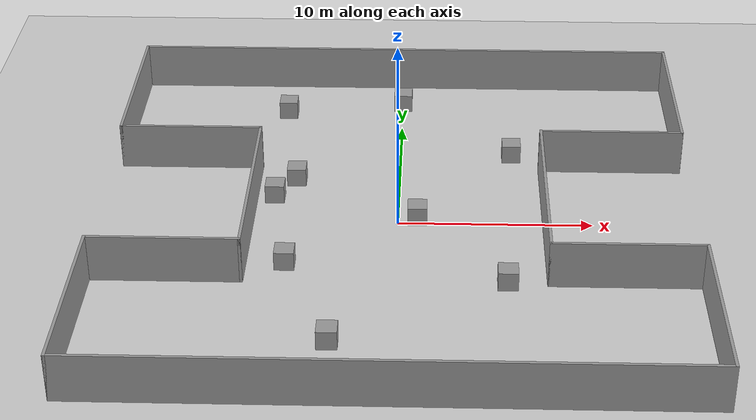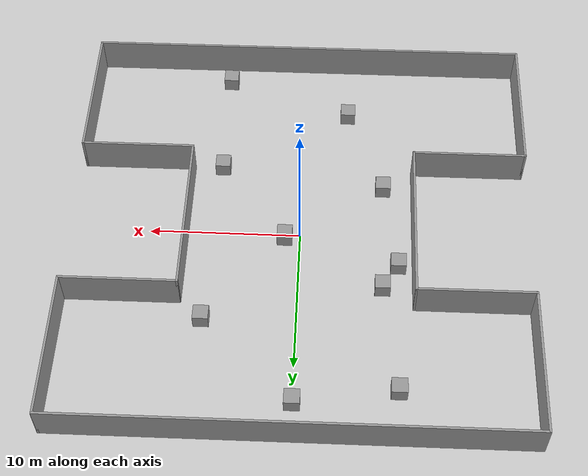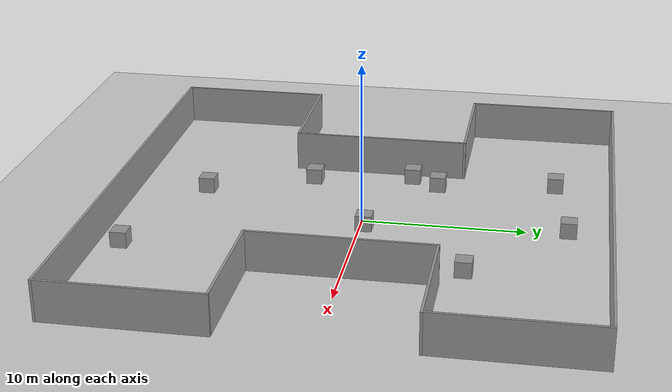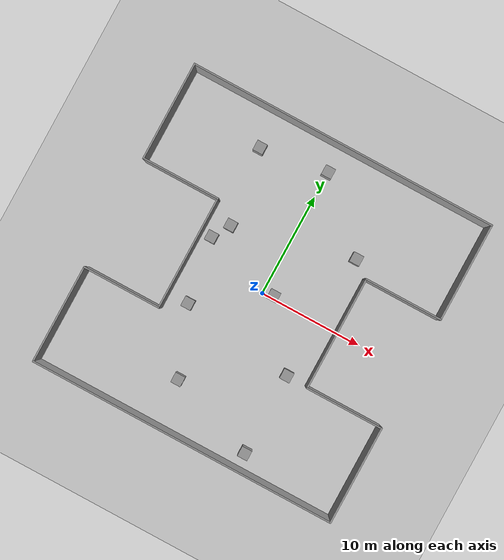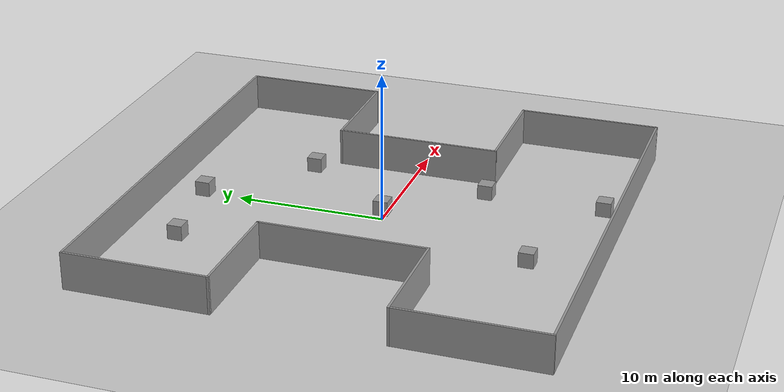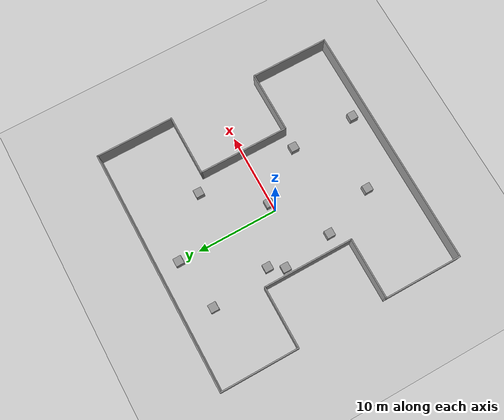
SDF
<sdf version="1.7">
 <world name="default">
  <light name="sun" type="directional">
   <pose>0 0 10 0 -0 0</pose>
   <diffuse>0.8 0.8 0.8 1</diffuse>
   <specular>0.2 0.2 0.2 1</specular>
   <attenuation>
    <range>1000</range>
    <constant>0.9</constant>
    <linear>0.01</linear>
    <quadratic>0.001</quadratic>
   </attenuation>
   <direction>-0.5 0.1 -0.9</direction>
   <spot><inner_angle>0</inner_angle><outer_angle>0</outer_angle><falloff>0</falloff></spot>
  </light>
  <model name="ground_plane">
   <static>1</static>
   <link name="link">
    <collision name="collision">
     <geometry><plane><normal>0 0 1</normal><size>100 100</size></plane></geometry>
     <surface><friction><ode><mu>100</mu><mu2>50</mu2></ode></friction></surface>
    </collision>
    <visual name="visual">
     <cast_shadows>0</cast_shadows>
     <geometry><plane><normal>0 0 1</normal><size>100 100</size></plane></geometry>
     <material>
      <script><uri>file://media/materials/scripts/gazebo.material</uri><name>Gazebo/Grey</name></script>
     </material>
    </visual>
   </link>
  </model>
  <gravity>0 0 -9.8</gravity>
  <magnetic_field>6e-06 2.3e-05 -4.2e-05</magnetic_field>
  <atmosphere type="adiabatic"/>
  <physics type="ode">
   <max_step_size>0.001</max_step_size>
   <real_time_factor>1</real_time_factor>
   <real_time_update_rate>1000</real_time_update_rate>
  </physics>
  <scene><ambient>0.4 0.4 0.4 1</ambient><background>0.7 0.7 0.7 1</background><shadows>1</shadows></scene>
  <spherical_coordinates>
   <surface_model>EARTH_WGS84</surface_model>
   <latitude_deg>0</latitude_deg>
   <longitude_deg>0</longitude_deg>
   <elevation>0</elevation>
   <heading_deg>0</heading_deg>
  </spherical_coordinates>
  <model name="map3">
   <link name="Wall_0">
    <collision name="Wall_0_Collision">
     <geometry><box><size>9.65 0.15 2.5</size></box></geometry>
     <pose>0 0 1.25 0 -0 0</pose>
    </collision>
    <visual name="Wall_0_Visual">
     <pose>0 0 1.25 0 -0 0</pose>
     <geometry><box><size>9.65 0.15 2.5</size></box></geometry>
     <material>
      <script><uri>file://media/materials/scripts/gazebo.material</uri><name>Gazebo/Grey</name></script>
      <ambient>1 1 1 1</ambient>
     </material>
     <meta><layer>0</layer></meta>
    </visual>
    <pose>-15 10.25 0 0 -0 1.5708</pose>
   </link>
   <link name="Wall_10">
    <collision name="Wall_10_Collision">
     <geometry><box><size>9.65 0.15 2.5</size></box></geometry>
     <pose>0 0 1.25 0 -0 0</pose>
    </collision>
    <visual name="Wall_10_Visual">
     <pose>0 0 1.25 0 -0 0</pose>
     <geometry><box><size>9.65 0.15 2.5</size></box></geometry>
     <material>
      <script><uri>file://media/materials/scripts/gazebo.material</uri><name>Gazebo/Grey</name></script>
      <ambient>1 1 1 1</ambient>
     </material>
     <meta><layer>0</layer></meta>
    </visual>
    <pose>15 -10.25 0 0 -0 -1.5708</pose>
   </link>
   <link name="Wall_12">
    <collision name="Wall_12_Collision">
     <geometry><box><size>30.15 0.15 2.5</size></box></geometry>
     <pose>0 0 1.25 0 -0 0</pose>
    </collision>
    <visual name="Wall_12_Visual">
     <pose>0 0 1.25 0 -0 0</pose>
     <geometry><box><size>30.15 0.15 2.5</size></box></geometry>
     <material>
      <script><uri>file://media/materials/scripts/gazebo.material</uri><name>Gazebo/Grey</name></script>
      <ambient>1 1 1 1</ambient>
     </material>
     <meta><layer>0</layer></meta>
    </visual>
    <pose>0 -15 0 0 -0 0</pose>
   </link>
   <link name="Wall_14">
    <collision name="Wall_14_Collision">
     <geometry><box><size>7.65 0.15 2.5</size></box></geometry>
     <pose>0 0 1.25 0 -0 0</pose>
    </collision>
    <visual name="Wall_14_Visual">
     <pose>0 0 1.25 0 -0 0</pose>
     <geometry><box><size>7.65 0.15 2.5</size></box></geometry>
     <material>
      <script><uri>file://media/materials/scripts/gazebo.material</uri><name>Gazebo/Grey</name></script>
      <ambient>1 1 1 1</ambient>
     </material>
     <meta><layer>0</layer></meta>
    </visual>
    <pose>-11.25 -5.5 0 0 -0 0</pose>
   </link>
   <link name="Wall_16">
    <collision name="Wall_16_Collision">
     <geometry><box><size>7.65 0.15 2.5</size></box></geometry>
     <pose>0 0 1.25 0 -0 0</pose>
    </collision>
    <visual name="Wall_16_Visual">
     <pose>0 0 1.25 0 -0 0</pose>
     <geometry><box><size>7.65 0.15 2.5</size></box></geometry>
     <material>
      <script><uri>file://media/materials/scripts/gazebo.material</uri><name>Gazebo/Grey</name></script>
      <ambient>1 1 1 1</ambient>
     </material>
     <meta><layer>0</layer></meta>
    </visual>
    <pose>11.25 -5.5 0 0 -0 0</pose>
   </link>
   <link name="Wall_18">
    <collision name="Wall_18_Collision">
     <geometry><box><size>7.65 0.15 2.5</size></box></geometry>
     <pose>0 0 1.25 0 -0 0</pose>
    </collision>
    <visual name="Wall_18_Visual">
     <pose>0 0 1.25 0 -0 0</pose>
     <geometry><box><size>7.65 0.15 2.5</size></box></geometry>
     <material>
      <script><uri>file://media/materials/scripts/gazebo.material</uri><name>Gazebo/Grey</name></script>
      <ambient>1 1 1 1</ambient>
     </material>
     <meta><layer>0</layer></meta>
    </visual>
    <pose>-11.25 5.5 0 0 -0 0</pose>
   </link>
   <link name="Wall_2">
    <collision name="Wall_2_Collision">
     <geometry><box><size>11.15 0.15 2.5</size></box></geometry>
     <pose>0 0 1.25 0 -0 0</pose>
    </collision>
    <visual name="Wall_2_Visual">
     <pose>0 0 1.25 0 -0 0</pose>
     <geometry><box><size>11.15 0.15 2.5</size></box></geometry>
     <material>
      <script><uri>file://media/materials/scripts/gazebo.material</uri><name>Gazebo/Grey</name></script>
      <ambient>1 1 1 1</ambient>
     </material>
     <meta><layer>0</layer></meta>
    </visual>
    <pose>-7.5 0 0 0 -0 1.5708</pose>
   </link>
   <link name="Wall_20">
    <collision name="Wall_20_Collision">
     <geometry><box><size>7.65 0.15 2.5</size></box></geometry>
     <pose>0 0 1.25 0 -0 0</pose>
    </collision>
    <visual name="Wall_20_Visual">
     <pose>0 0 1.25 0 -0 0</pose>
     <geometry><box><size>7.65 0.15 2.5</size></box></geometry>
     <material>
      <script><uri>file://media/materials/scripts/gazebo.material</uri><name>Gazebo/Grey</name></script>
      <ambient>1 1 1 1</ambient>
     </material>
     <meta><layer>0</layer></meta>
    </visual>
    <pose>11.25 5.5 0 0 -0 0</pose>
   </link>
   <link name="Wall_22">
    <collision name="Wall_22_Collision">
     <geometry><box><size>30.15 0.15 2.5</size></box></geometry>
     <pose>0 0 1.25 0 -0 0</pose>
    </collision>
    <visual name="Wall_22_Visual">
     <pose>0 0 1.25 0 -0 0</pose>
     <geometry><box><size>30.15 0.15 2.5</size></box></geometry>
     <material>
      <script><uri>file://media/materials/scripts/gazebo.material</uri><name>Gazebo/Grey</name></script>
      <ambient>1 1 1 1</ambient>
     </material>
     <meta><layer>0</layer></meta>
    </visual>
    <pose>0 15 0 0 -0 0</pose>
   </link>
   <link name="Wall_4">
    <collision name="Wall_4_Collision">
     <geometry><box><size>9.65 0.15 2.5</size></box></geometry>
     <pose>0 0 1.25 0 -0 0</pose>
    </collision>
    <visual name="Wall_4_Visual">
     <pose>0 0 1.25 0 -0 0</pose>
     <geometry><box><size>9.65 0.15 2.5</size></box></geometry>
     <material>
      <script><uri>file://media/materials/scripts/gazebo.material</uri><name>Gazebo/Grey</name></script>
      <ambient>1 1 1 1</ambient>
     </material>
     <meta><layer>0</layer></meta>
    </visual>
    <pose>-15 -10.25 0 0 -0 -1.5708</pose>
   </link>
   <link name="Wall_6">
    <collision name="Wall_6_Collision">
     <geometry><box><size>11.15 0.15 2.5</size></box></geometry>
     <pose>0 0 1.25 0 -0 0</pose>
    </collision>
    <visual name="Wall_6_Visual">
     <pose>0 0 1.25 0 -0 0</pose>
     <geometry><box><size>11.15 0.15 2.5</size></box></geometry>
     <material>
      <script><uri>file://media/materials/scripts/gazebo.material</uri><name>Gazebo/Grey</name></script>
      <ambient>1 1 1 1</ambient>
     </material>
     <meta><layer>0</layer></meta>
    </visual>
    <pose>7.5 0 0 0 -0 -1.5708</pose>
   </link>
   <link name="Wall_8">
    <collision name="Wall_8_Collision">
     <geometry><box><size>9.65 0.15 2.5</size></box></geometry>
     <pose>0 0 1.25 0 -0 0</pose>
    </collision>
    <visual name="Wall_8_Visual">
     <pose>0 0 1.25 0 -0 0</pose>
     <geometry><box><size>9.65 0.15 2.5</size></box></geometry>
     <material>
      <script><uri>file://media/materials/scripts/gazebo.material</uri><name>Gazebo/Grey</name></script>
      <ambient>1 1 1 1</ambient>
     </material>
     <meta><layer>0</layer></meta>
    </visual>
    <pose>15 10.25 0 0 -0 -1.5708</pose>
   </link>
   <static>1</static>
  </model>
  <model name="unit_box">
   <pose>-6.49999 11.5 0.499995 0 1e-05 0</pose>
   <link name="link">
    <inertial>
     <mass>1</mass>
     <inertia>
      <ixx>0.166667</ixx>
      <ixy>0</ixy>
      <ixz>0</ixz>
      <iyy>0.166667</iyy>
      <iyz>0</iyz>
      <izz>0.166667</izz>
     </inertia>
    </inertial>
    <collision name="collision"><geometry><box><size>1 1 1</size></box></geometry></collision>
    <visual name="visual">
     <geometry><box><size>1 1 1</size></box></geometry>
     <material>
      <script><name>Gazebo/Grey</name><uri>file://media/materials/scripts/gazebo.material</uri></script>
     </material>
    </visual>
   </link>
  </model>
  <model name="unit_box_0">
   <pose>-0 12.5 0.499995 -1e-05 -0 -0</pose>
   <link name="link">
    <inertial>
     <mass>1</mass>
     <inertia>
      <ixx>0.166667</ixx>
      <ixy>0</ixy>
      <ixz>0</ixz>
      <iyy>0.166667</iyy>
      <iyz>0</iyz>
      <izz>0.166667</izz>
     </inertia>
    </inertial>
    <collision name="collision"><geometry><box><size>1 1 1</size></box></geometry></collision>
    <visual name="visual">
     <geometry><box><size>1 1 1</size></box></geometry>
     <material>
      <script><name>Gazebo/Grey</name><uri>file://media/materials/scripts/gazebo.material</uri></script>
     </material>
    </visual>
   </link>
  </model>
  <model name="unit_box_1">
   <pose>6 6.8 0.5 0 -0 0</pose>
   <link name="link">
    <inertial>
     <mass>1</mass>
     <inertia>
      <ixx>0.166667</ixx>
      <ixy>0</ixy>
      <ixz>0</ixz>
      <iyy>0.166667</iyy>
      <iyz>0</iyz>
      <izz>0.166667</izz>
     </inertia>
    </inertial>
    <collision name="collision"><geometry><box><size>1 1 1</size></box></geometry></collision>
    <visual name="visual">
     <geometry><box><size>1 1 1</size></box></geometry>
     <material>
      <script><name>Gazebo/Grey</name><uri>file://media/materials/scripts/gazebo.material</uri></script>
     </material>
    </visual>
   </link>
  </model>
  <model name="unit_box_2">
   <pose>-5.47727 4.04526 0.5 0 -0 0</pose>
   <link name="link">
    <inertial>
     <mass>1</mass>
     <inertia>
      <ixx>0.166667</ixx>
      <ixy>0</ixy>
      <ixz>0</ixz>
      <iyy>0.166667</iyy>
      <iyz>0</iyz>
      <izz>0.166667</izz>
     </inertia>
    </inertial>
    <collision name="collision"><geometry><box><size>1 1 1</size></box></geometry></collision>
    <visual name="visual">
     <geometry><box><size>1 1 1</size></box></geometry>
     <material>
      <script><name>Gazebo/Grey</name><uri>file://media/materials/scripts/gazebo.material</uri></script>
     </material>
    </visual>
   </link>
  </model>
  <model name="unit_box_3">
   <pose>-6.5 2.30001 0.499995 -1e-05 0 0</pose>
   <link name="link">
    <inertial>
     <mass>1</mass>
     <inertia>
      <ixx>0.166667</ixx>
      <ixy>0</ixy>
      <ixz>0</ixz>
      <iyy>0.166667</iyy>
      <iyz>0</iyz>
      <izz>0.166667</izz>
     </inertia>
    </inertial>
    <collision name="collision"><geometry><box><size>1 1 1</size></box></geometry></collision>
    <visual name="visual">
     <geometry><box><size>1 1 1</size></box></geometry>
     <material>
      <script><name>Gazebo/Grey</name><uri>file://media/materials/scripts/gazebo.material</uri></script>
     </material>
    </visual>
   </link>
  </model>
  <model name="unit_box_4">
   <pose>0.999995 0.3 0.499995 0 -1e-05 0</pose>
   <link name="link">
    <inertial>
     <mass>1</mass>
     <inertia>
      <ixx>0.166667</ixx>
      <ixy>0</ixy>
      <ixz>0</ixz>
      <iyy>0.166667</iyy>
      <iyz>0</iyz>
      <izz>0.166667</izz>
     </inertia>
    </inertial>
    <collision name="collision"><geometry><box><size>1 1 1</size></box></geometry></collision>
    <visual name="visual">
     <geometry><box><size>1 1 1</size></box></geometry>
     <material>
      <script><name>Gazebo/Grey</name><uri>file://media/materials/scripts/gazebo.material</uri></script>
     </material>
    </visual>
   </link>
  </model>
  <model name="unit_box_5">
   <pose>-5.5 -4 0.499995 0 1e-05 0</pose>
   <link name="link">
    <inertial>
     <mass>1</mass>
     <inertia>
      <ixx>0.166667</ixx>
      <ixy>0</ixy>
      <ixz>0</ixz>
      <iyy>0.166667</iyy>
      <iyz>0</iyz>
      <izz>0.166667</izz>
     </inertia>
    </inertial>
    <collision name="collision"><geometry><box><size>1 1 1</size></box></geometry></collision>
    <visual name="visual">
     <geometry><box><size>1 1 1</size></box></geometry>
     <material>
      <script><name>Gazebo/Grey</name><uri>file://media/materials/scripts/gazebo.material</uri></script>
     </material>
    </visual>
   </link>
  </model>
  <model name="unit_box_6">
   <pose>5.5 -5.5 0.499995 0 -1e-05 0</pose>
   <link name="link">
    <inertial>
     <mass>1</mass>
     <inertia>
      <ixx>0.166667</ixx>
      <ixy>0</ixy>
      <ixz>0</ixz>
      <iyy>0.166667</iyy>
      <iyz>0</iyz>
      <izz>0.166667</izz>
     </inertia>
    </inertial>
    <collision name="collision"><geometry><box><size>1 1 1</size></box></geometry></collision>
    <visual name="visual">
     <geometry><box><size>1 1 1</size></box></geometry>
     <material>
      <script><name>Gazebo/Grey</name><uri>file://media/materials/scripts/gazebo.material</uri></script>
     </material>
    </visual>
   </link>
  </model>
  <model name="unit_box_7">
   <pose>-3 -10.5 0.499995 0 -1e-05 0</pose>
   <link name="link">
    <inertial>
     <mass>1</mass>
     <inertia>
      <ixx>0.166667</ixx>
      <ixy>0</ixy>
      <ixz>0</ixz>
      <iyy>0.166667</iyy>
      <iyz>0</iyz>
      <izz>0.166667</izz>
     </inertia>
    </inertial>
    <collision name="collision"><geometry><box><size>1 1 1</size></box></geometry></collision>
    <visual name="visual">
     <geometry><box><size>1 1 1</size></box></geometry>
     <material>
      <script><name>Gazebo/Grey</name><uri>file://media/materials/scripts/gazebo.material</uri></script>
     </material>
    </visual>
   </link>
  </model>
  <model name="unit_box_8">
   <pose>5.5 -13.5 0.499995 1e-05 -0 0</pose>
   <link name="link">
    <inertial>
     <mass>1</mass>
     <inertia>
      <ixx>0.166667</ixx>
      <ixy>0</ixy>
      <ixz>0</ixz>
      <iyy>0.166667</iyy>
      <iyz>0</iyz>
      <izz>0.166667</izz>
     </inertia>
    </inertial>
    <collision name="collision"><geometry><box><size>1 1 1</size></box></geometry></collision>
    <visual name="visual">
     <geometry><box><size>1 1 1</size></box></geometry>
     <material>
      <script><name>Gazebo/Grey</name><uri>file://media/materials/scripts/gazebo.material</uri></script>
     </material>
    </visual>
   </link>
  </model>
 </world>
</sdf>
